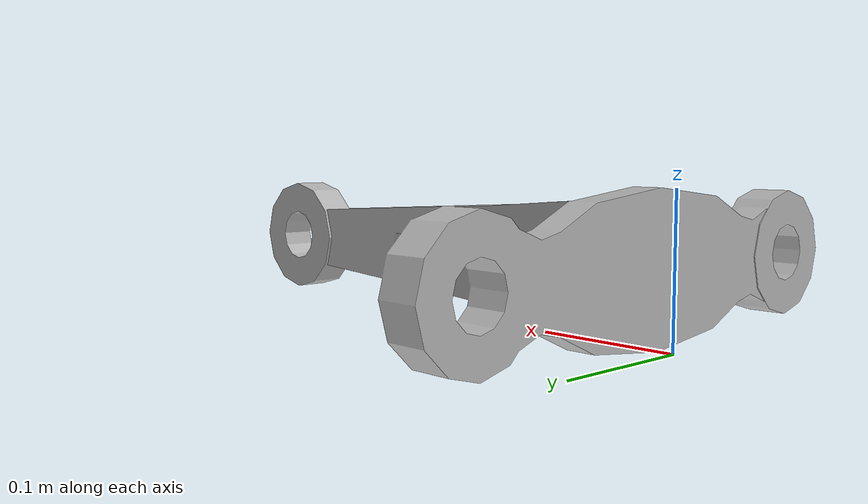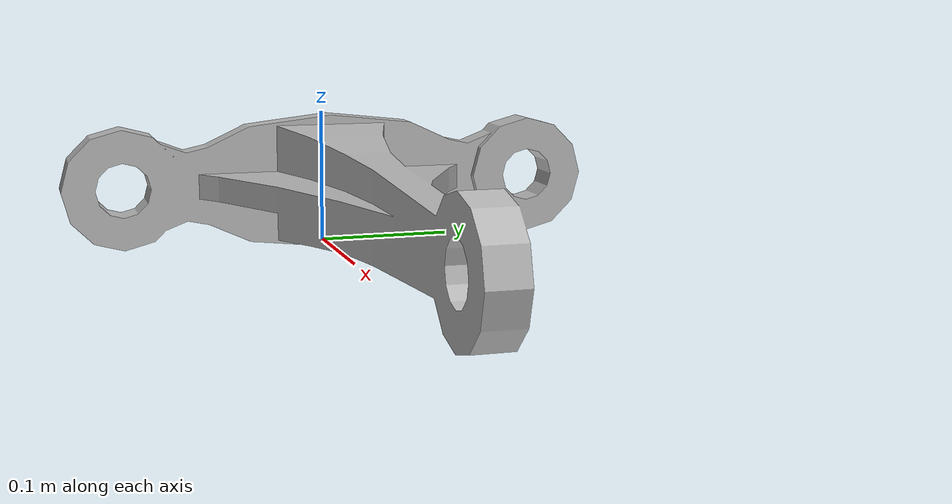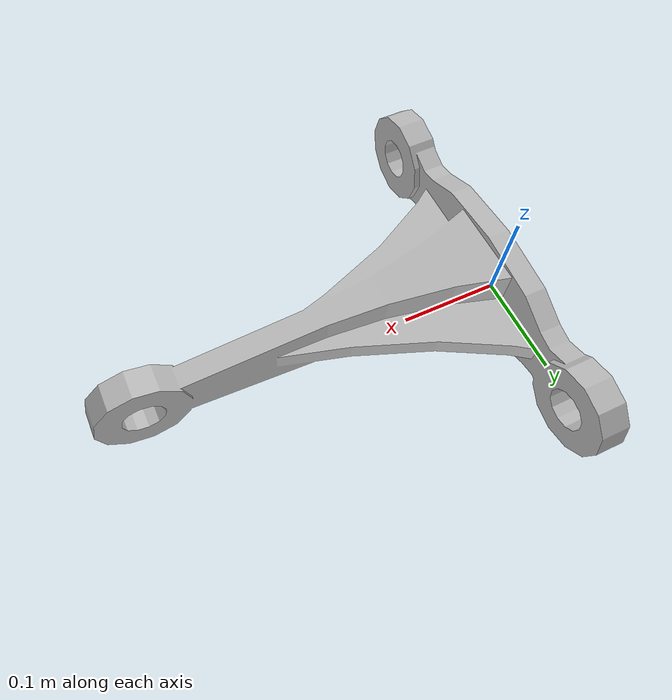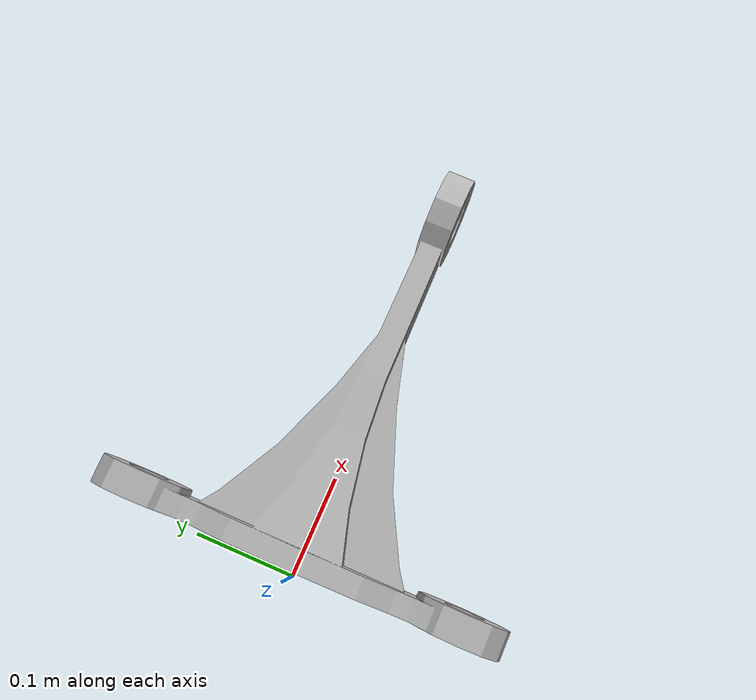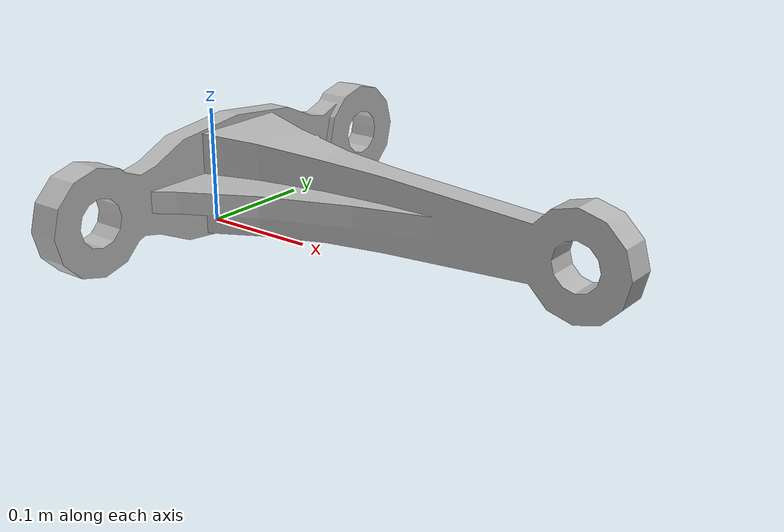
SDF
<?xml version="1.0" ?>
<sdf version="1.6">
  <model name="t_brace_part">
    <link name="link">
      <inertial>
        <pose>0.22079 0 0.04663 0 0 0</pose>
        <mass>0.5</mass>
        <inertia>
          <ixx>0.00698181016</ixx>
          <ixy>0</ixy>
          <ixz>0</ixz>
          <iyy>0.00703472735</iyy>
          <iyz>0</iyz>
          <izz>0.01329175188</izz>
        </inertia>
      </inertial>

      <collision name="collision1">
        <pose>0.02115 0 0.04663 0 0 0</pose>
        <geometry>
          <box>
            <size>0.02038 0.39858 0.09326</size>
          </box>
        </geometry>
      </collision>

      <collision name="collision2">
        <pose>0.22079 0 0.05013 0 0 0</pose>
        <geometry>
          <box>
            <size>0.40017 0.02038 0.0866</size>
          </box>
        </geometry>
      </collision>

      <collision name="collision3">
        <pose>0.09895 0 0.05013 0 0 0</pose>
        <geometry>
          <box>
            <size>0.13997 0.11302 0.0866</size>
          </box>
        </geometry>
      </collision>

      <visual name="visual">
         <geometry>
           <mesh>
             <uri>model://t_brace_part/meshes/t_brace.dae</uri>
           </mesh>
         </geometry>
        <material>
          <script>
            <uri>model://arm_part/materials/scripts</uri>
            <uri>model://arm_part/materials/textures</uri>
            <name>ArmPart/Diffuse</name>
          </script>
        </material>
       </visual>
    </link>
  </model>
</sdf>
